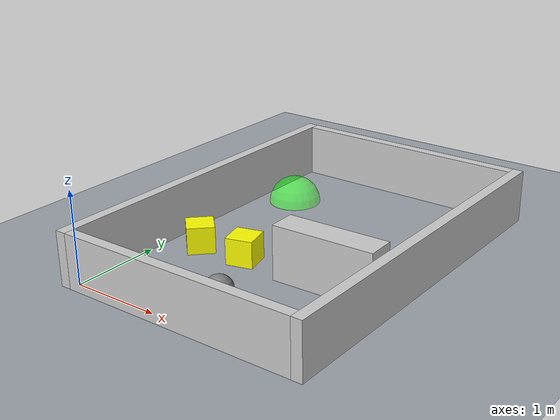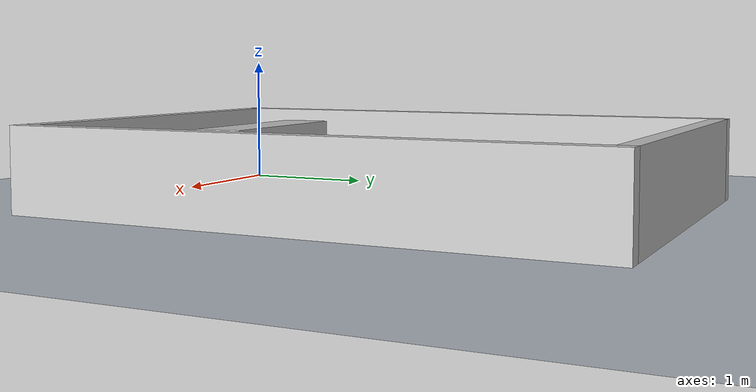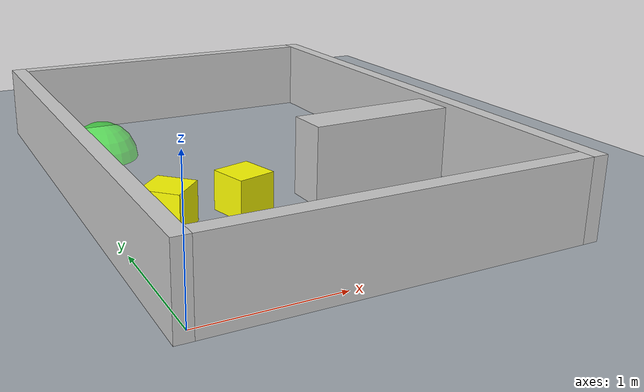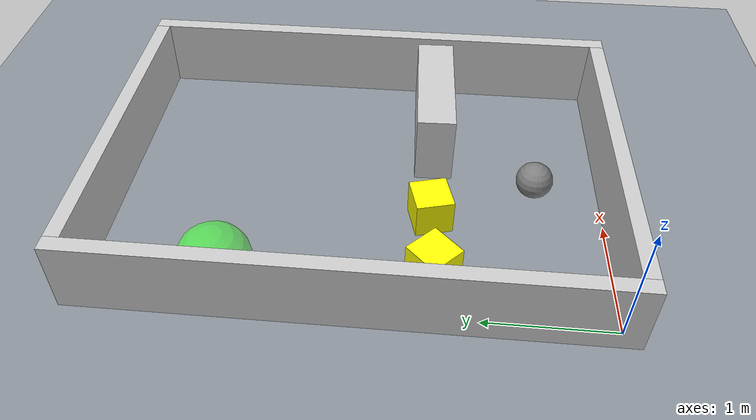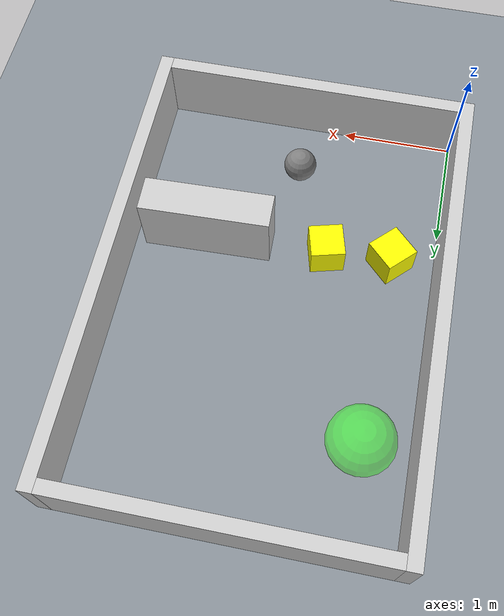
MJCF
<?xml version="1.0" ?>
<mujoco model="generated_environment">
  <option timestep="0.01" integrator="RK4" cone="elliptic"/>
  <default>
    <geom density="1"/>
  </default>
  <asset>
    <texture builtin="gradient" height="3072" rgb1="0.3 0.5 0.7" rgb2="0 0 0" type="skybox" width="512"/>
    <texture builtin="checker" height="300" mark="edge" markrgb="0.8 0.8 0.8" name="groundplane" rgb1="0.2 0.3 0.4" rgb2="0.1 0.2 0.3" type="2d" width="300"/>
    <material name="groundplane" reflectance="0.2" texrepeat="5 5" texture="groundplane" texuniform="true"/>
    <material name="robot" rgba="1.0 1.0 0.0 1.0"/>
  </asset>
  <worldbody>
    <light dir="0 0 -1" directional="true" pos="0 0 1.5"/>
    <geom condim="4" friction="0.5 0.005 0.001" material="groundplane" name="floor" size="0 0 0.05" type="plane"/>
    <body name="walls">
      <geom name="wall_1" condim="4" pos="-0.06 1.9500000000000002 0.30000000000000004" rgba="0.800000011920929 0.800000011920929 0.800000011920929 1.0" size="0.06 2.0700000000000003 0.30000000000000004" type="box"/>
      <geom name="wall_2" condim="4" pos="2.7600000000000002 1.9500000000000002 0.30000000000000004" rgba="0.800000011920929 0.800000011920929 0.800000011920929 1.0" size="0.06 2.0700000000000003 0.30000000000000004" type="box"/>
      <geom name="wall_3" condim="4" pos="1.35 -0.06 0.30000000000000004" rgba="0.800000011920929 0.800000011920929 0.800000011920929 1.0" size="1.35 0.06 0.30000000000000004" type="box"/>
      <geom name="wall_4" condim="4" pos="1.35 3.9600000000000004 0.30000000000000004" rgba="0.800000011920929 0.800000011920929 0.800000011920929 1.0" size="1.35 0.06 0.30000000000000004" type="box"/>
    </body>
    <body name="robot">
      <joint name="joint_x" type="slide" pos="0 0 0" axis="1 0 0"/>
      <joint name="joint_y" type="slide" pos="0 0 0" axis="0 1 0"/>
      <geom name="robot" type="sphere" pos="1.3617868333334244 0.5301452155107035 0.15000000000000002" size="0.15000000000000002 0.15000000000000002 0.15000000000000002" mass="5.0" friction="1.0 0.005 0.0001" condim="4"/>
    </body>
    <body name="wall_5">
      <geom name="wall_5" condim="4" pos="2.039170497773397 1.376209882115591 0.30000000000000004" euler="0 0 91.6636033022931" rgba="0.800000011920929 0.800000011920929 0.800000011920929 1.0" size="0.15600000000000003 0.5700000000000001 0.30000000000000004" type="box"/>
    </body>
    <body name="obstacle_1_movable">
      <geom name="obstacle_1_movable" condim="4" pos="0.9751949411389648 1.3720733705997883 0.15000000000000002" euler="0 0 14.738735863317174" friction="0.0 0.005 0.001" rgba="1 1 0 1" size="0.15000000000000002 0.15000000000000002 0.15000000000000002" type="box" mass="0.1"/>
      <joint type="free"/>
    </body>
    <body name="obstacle_2_movable">
      <geom name="obstacle_2_movable" condim="4" pos="0.3975099330079671 1.336141421918501 0.15000000000000002" euler="0 0 314.8439989236976" friction="0.0 0.005 0.001" rgba="1 1 0 1" size="0.15000000000000002 0.15000000000000002 0.15000000000000002" type="box" mass="0.1"/>
      <joint type="free"/>
    </body>
    <site name="goal" type="sphere" size="0.30000000000000004 0.30000000000000004 0.30000000000000004" rgba="0 1 0 0.5" pos="0.40185035356879306 2.9994234025882203 0.0"/>
  </worldbody>
  <actuator>
    <motor name="actuator_x" joint="joint_x" gear="1" ctrlrange="-1 1"/>
    <motor name="actuator_y" joint="joint_y" gear="1" ctrlrange="-1 1"/>
  </actuator>
</mujoco>
